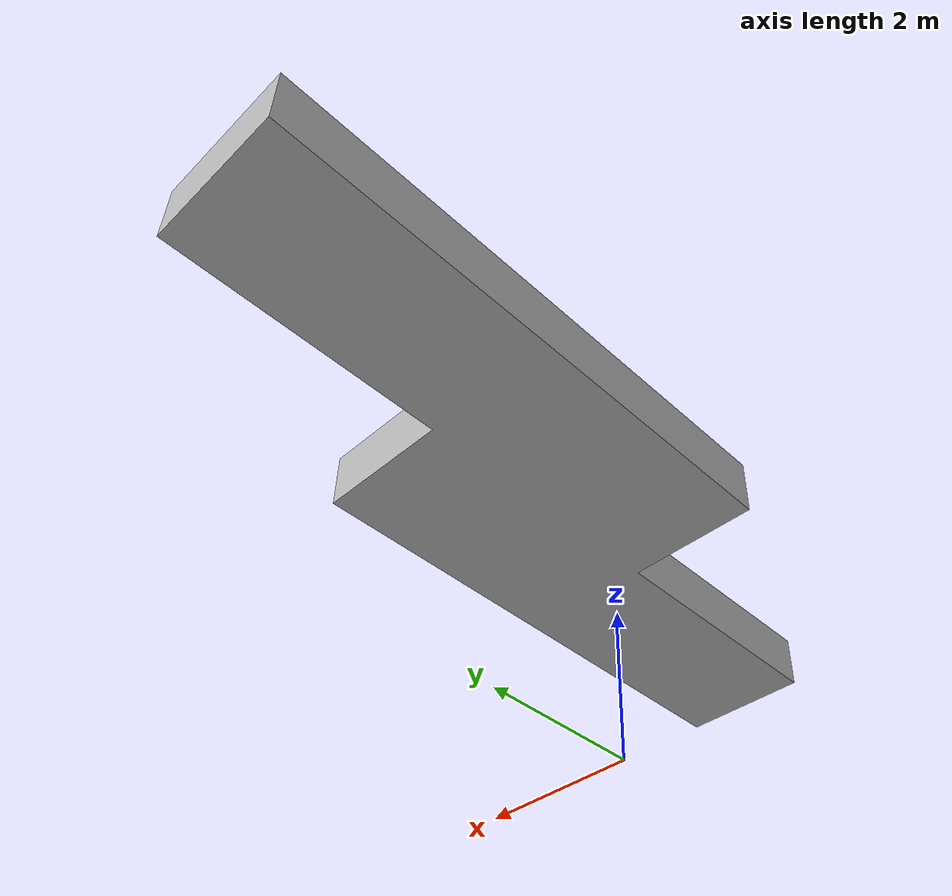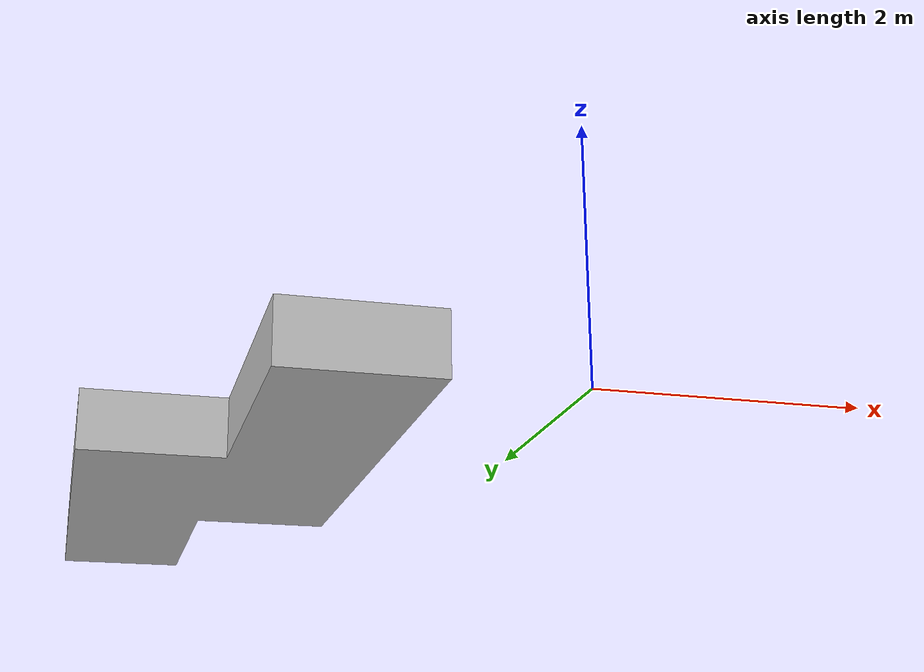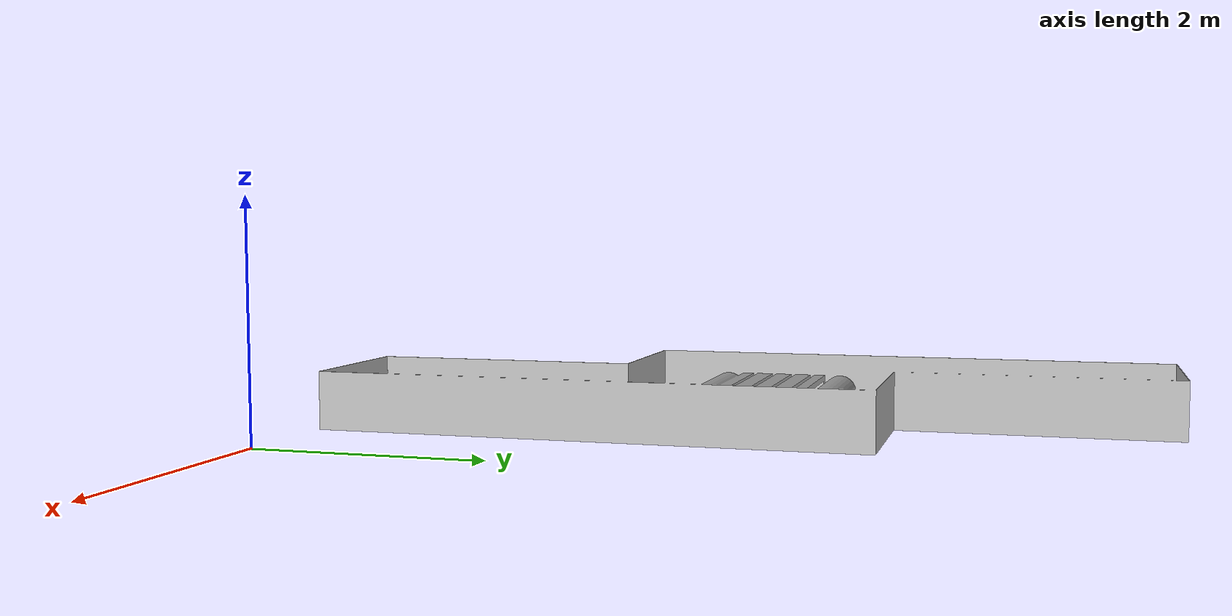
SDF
<?xml version="1.0" ?>
<sdf version="1.6">
  <model name="pallette_pipes">
    <static>true</static>
    <pose>-1 0 0 1.5708 0 0</pose>
    <link name="link">
      <collision name="collision">
        <geometry>
          <mesh>
            <scale>0.01 0.01 0.01</scale>
            <uri>model://pallette_pipes/pallette_pipes.dae</uri>
          </mesh>
        </geometry>
        <surface>
          <friction>
            <ode>
              <mu>100</mu>
              <mu2>50</mu2>
            </ode>
          </friction>
        </surface>
      </collision>
      <visual name="visual">
        <geometry>
          <mesh>
            <scale>0.01 0.01 0.01</scale>
            <uri>model://pallette_pipes/pallette_pipes.dae</uri>
          </mesh>
        </geometry>
      </visual>
    </link>
  </model>
</sdf>
